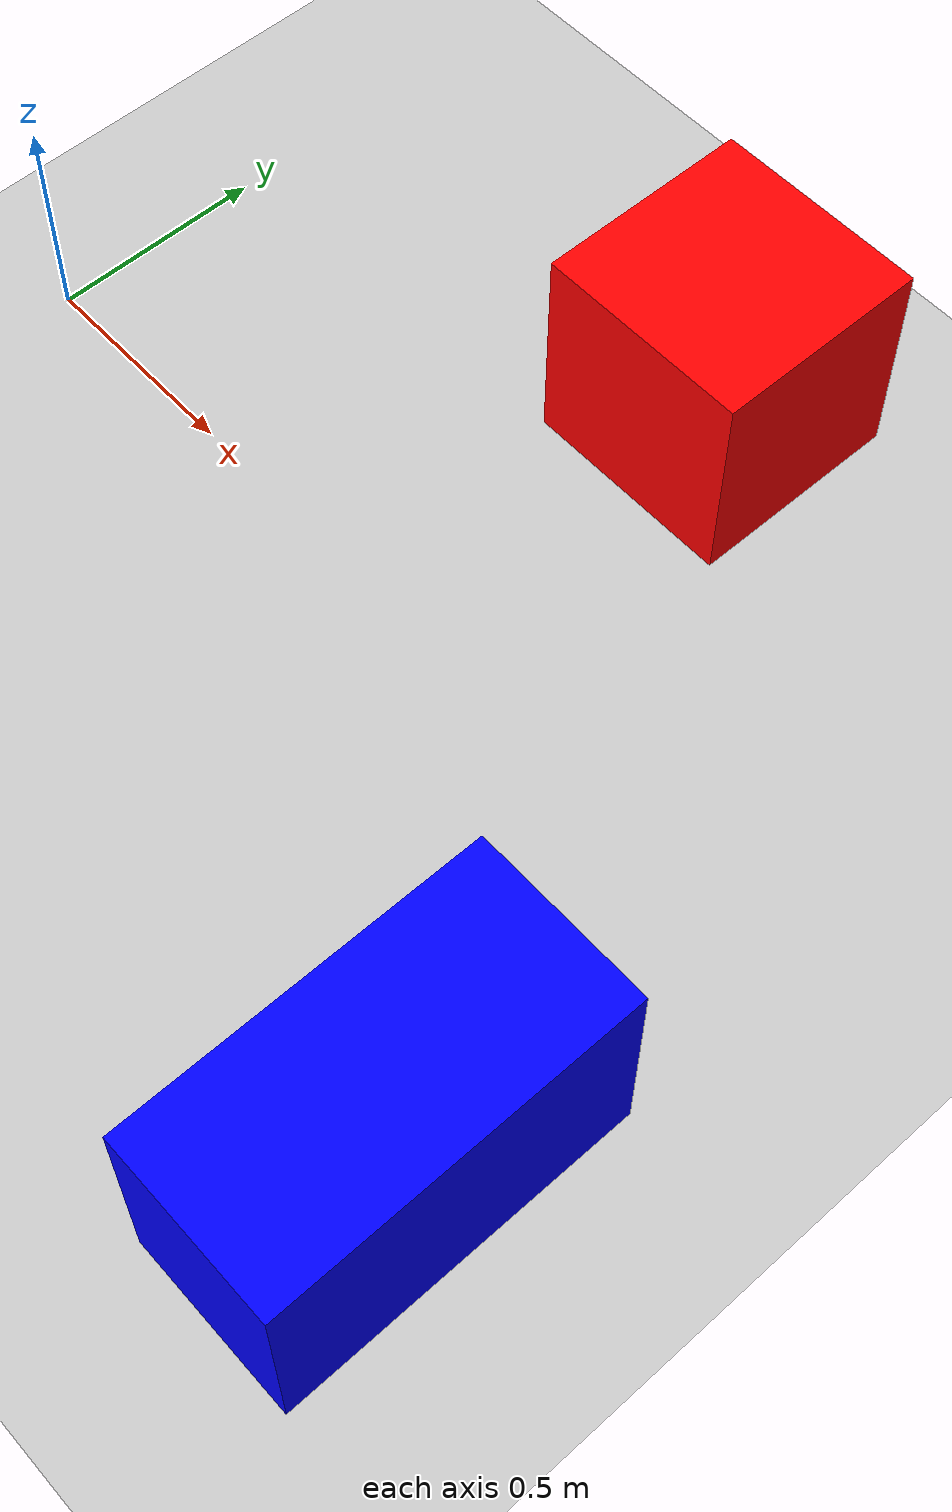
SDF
<?xml version="1.0" ?>
<sdf version="1.6">
  <world name="obstacle_world">

    <!-- Sunlight -->
    <include>
      <uri>model://sun</uri>
    </include>

    <!-- Ground plane -->
    <include>
      <uri>model://ground_plane</uri>
    </include>

    <!-- Physics -->
    <physics name="default_physics" type="ode">
      <max_step_size>0.001</max_step_size>
      <real_time_factor>1.0</real_time_factor>
      <real_time_update_rate>1000</real_time_update_rate>
    </physics>

    <!-- Box obstacle 1 (red) -->
    <model name="box_obstacle_1">
      <static>true</static>
      <pose>1.2 0.8 0.25 0 0 0</pose>
      <link name="link">
        <visual name="visual">
          <geometry>
            <box>
              <size>0.5 0.5 0.5</size>
            </box>
          </geometry>
          <material>
            <ambient>1 0 0 1</ambient>
            <diffuse>1 0 0 1</diffuse>
          </material>
        </visual>
        <collision name="collision">
          <geometry>
            <box>
              <size>0.5 0.5 0.5</size>
            </box>
          </geometry>
        </collision>
      </link>
    </model>

    <!-- Box obstacle 2 (blue) -->
    <model name="box_obstacle_2">
      <static>true</static>
      <pose>2.0 -0.8 0.25 0 0 0</pose>
      <link name="link">
        <visual name="visual">
          <geometry>
            <box>
              <size>0.4 0.8 0.5</size>
            </box>
          </geometry>
          <material>
            <ambient>0 0 1 1</ambient>
            <diffuse>0 0 1 1</diffuse>
          </material>
        </visual>
        <collision name="collision">
          <geometry>
            <box>
              <size>0.4 0.8 0.5</size>
            </box>
          </geometry>
        </collision>
      </link>
    </model>

  </world>
</sdf>
